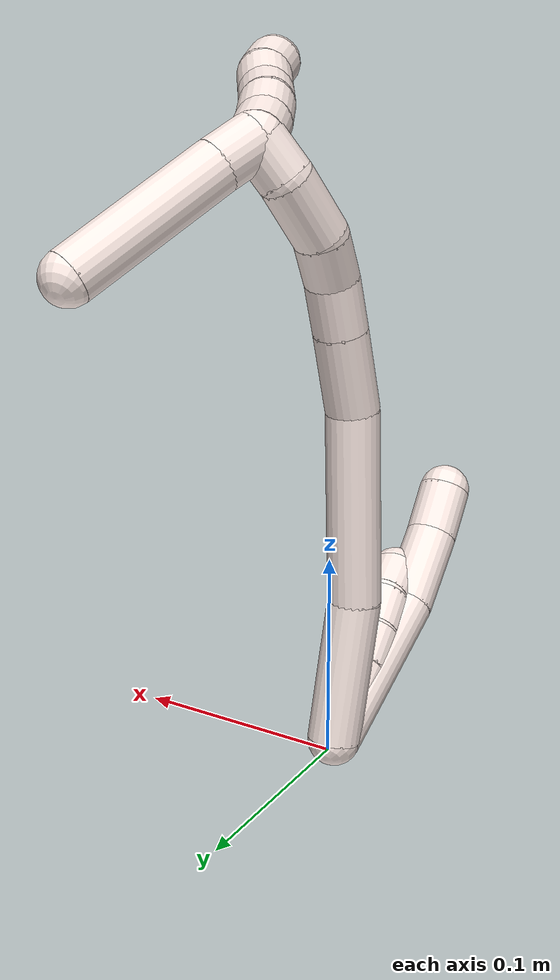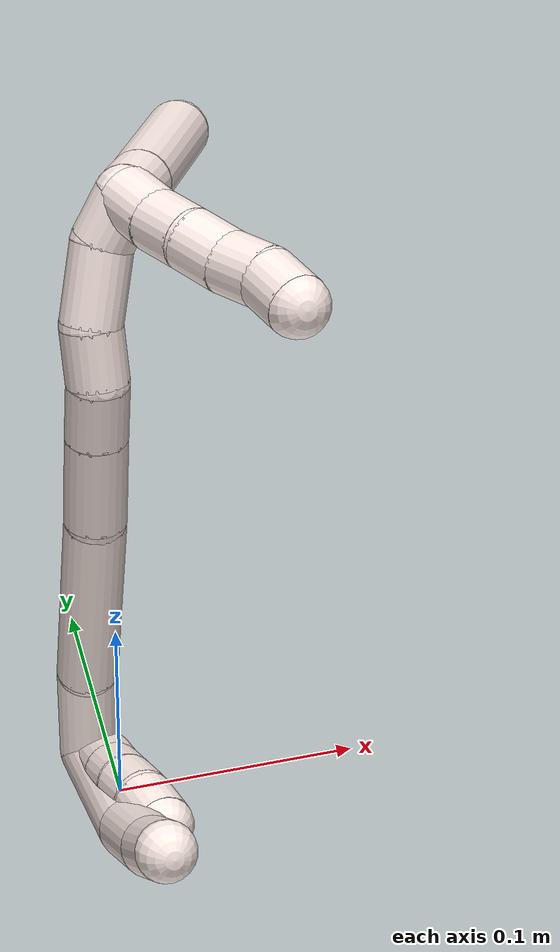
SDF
<sdf version="1.7">
 <world name="default">
  <model name="photoneo_s_sensor">
   <static>1</static>
   <pose>0 0 2 1.57079 1.57079 3.14159</pose>
   <link name="link">
    <inertial><mass>0.1</mass></inertial>
    <sensor name="sensor" type="depth">
     <update_rate>30</update_rate>
     <camera>
      <horizontal_fov>1.22</horizontal_fov>
      <image><width>1920</width><height>1200</height><format>B8G8R8</format></image>
      <clip><near>0.1</near><far>4</far></clip>
      <depth_camera><output>points</output></depth_camera>
     </camera>
     <plugin name="camera_plugin" filename="libgazebo_ros_depth_camera.so">
      <baseline>0.2</baseline>
      <alwaysOn>1</alwaysOn>
      <updateRate>0.0</updateRate>
      <cameraName>camera_ir</cameraName>
      <imageTopicName>/camera/color/image_raw</imageTopicName>
      <cameraInfoTopicName>/camera/color/camera_info</cameraInfoTopicName>
      <depthImageTopicName>/camera/depth/image_raw</depthImageTopicName>
      <depthImageCameraInfoTopicName>/camera/depth/camera_info</depthImageCameraInfoTopicName>
      <pointCloudTopicName>/camera/depth/points</pointCloudTopicName>
      <frameName>fr_optical</frameName>
      <pointCloudCutoff>0.1</pointCloudCutoff>
      <pointCloudCutoffMax>2.0</pointCloudCutoffMax>
      <distortionK1>0</distortionK1>
      <distortionK2>0</distortionK2>
      <distortionK3>0</distortionK3>
      <distortionT1>0</distortionT1>
      <distortionT2>0</distortionT2>
      <CxPrime>0</CxPrime>
      <Cx>0</Cx>
      <Cy>0</Cy>
      <focalLength>0</focalLength>
      <hackBaseline>0</hackBaseline>
     </plugin>
    </sensor>
   </link>
  </model>
  <model name="bin">
   <static>1</static>
   <link name="bottom">
    <collision name="collision-bottom">
     <pose>0 0 -0.01 0 -0 0</pose>
     <geometry><box><size>0.8 0.6 0.02</size></box></geometry>
     <surface>
      <friction><ode><mu>100</mu><mu2>100</mu2></ode></friction>
      <contact><collide_bitmask>65535</collide_bitmask></contact>
     </surface>
    </collision>
   </link>
   <link name="west_wall">
    <collision name="collision-west_wall">
     <pose>-0.41 0 0.1 0 -0 0</pose>
     <geometry><box><size>0.02 0.6 0.2</size></box></geometry>
     <surface>
      <friction><ode><mu>100</mu><mu2>100</mu2></ode></friction>
      <contact><collide_bitmask>65535</collide_bitmask></contact>
     </surface>
    </collision>
   </link>
   <link name="east_wall">
    <collision name="collision-east_wall">
     <pose>0.41 0 0.1 0 -0 0</pose>
     <geometry><box><size>0.02 0.6 0.2</size></box></geometry>
     <surface>
      <friction><ode><mu>100</mu><mu2>100</mu2></ode></friction>
      <contact><collide_bitmask>65535</collide_bitmask></contact>
     </surface>
    </collision>
   </link>
   <link name="south_wall">
    <collision name="collision-south_wall">
     <pose>0 -0.31 0.1 0 -0 0</pose>
     <geometry><box><size>0.8 0.02 0.2</size></box></geometry>
     <surface>
      <friction><ode><mu>100</mu><mu2>100</mu2></ode></friction>
      <contact><collide_bitmask>65535</collide_bitmask></contact>
     </surface>
    </collision>
   </link>
   <link name="north_wall">
    <collision name="collision-north_wall">
     <pose>0 0.31 0.1 0 -0 0</pose>
     <geometry><box><size>0.8 0.02 0.2</size></box></geometry>
     <surface>
      <friction><ode><mu>100</mu><mu2>100</mu2></ode></friction>
      <contact><collide_bitmask>65535</collide_bitmask></contact>
     </surface>
    </collision>
   </link>
  </model>
  <model name="11">
   <static>0</static>
   <link name="11">
    <collision name="collision-cylinder-e_1_2_8">
     <pose>-0.004917 -0.001652 0.041779 0.039524 -0.11706 -0.002316</pose>
     <geometry><cylinder><radius>0.0125</radius><length>0.0842</length></cylinder></geometry>
     <surface>
      <friction><ode><mu>1.16</mu><mu2>1.16</mu2><slip1>0</slip1><slip2>0</slip2></ode></friction>
      <contact><ode><kp>1e+06</kp><kd>1</kd><max_vel>0</max_vel><min_depth>0.001</min_depth></ode></contact>
     </surface>
    </collision>
    <visual name="visual-cylinder-e_1_2_8">
     <pose>-0.004917 -0.001652 0.041779 0.039524 -0.11706 -0.002316</pose>
     <geometry><cylinder><radius>0.0125</radius><length>0.0842</length></cylinder></geometry>
     <material><ambient>1 0.933333 0.909804 1</ambient></material>
    </visual>
    <collision name="collision-cylinder-e_2_8_9">
     <pose>-0.0098 -0.000385 0.103341 -0.146503 0.001705 -0.000125</pose>
     <geometry><cylinder><radius>0.0125</radius><length>0.039994</length></cylinder></geometry>
     <surface>
      <friction><ode><mu>1.16</mu><mu2>1.16</mu2><slip1>0</slip1><slip2>0</slip2></ode></friction>
      <contact><ode><kp>1e+06</kp><kd>1</kd><max_vel>0</max_vel><min_depth>0.001</min_depth></ode></contact>
     </surface>
    </collision>
    <visual name="visual-cylinder-e_2_8_9">
     <pose>-0.0098 -0.000385 0.103341 -0.146503 0.001705 -0.000125</pose>
     <geometry><cylinder><radius>0.0125</radius><length>0.039994</length></cylinder></geometry>
     <material><ambient>1 0.933333 0.909804 1</ambient></material>
    </visual>
    <collision name="collision-cylinder-e_3_9_6">
     <pose>-0.009136 0.005717 0.135612 -0.249557 0.048852 -0.006129</pose>
     <geometry><cylinder><radius>0.0125</radius><length>0.025806</length></cylinder></geometry>
     <surface>
      <friction><ode><mu>1.16</mu><mu2>1.16</mu2><slip1>0</slip1><slip2>0</slip2></ode></friction>
      <contact><ode><kp>1e+06</kp><kd>1</kd><max_vel>0</max_vel><min_depth>0.001</min_depth></ode></contact>
     </surface>
    </collision>
    <visual name="visual-cylinder-e_3_9_6">
     <pose>-0.009136 0.005717 0.135612 -0.249557 0.048852 -0.006129</pose>
     <geometry><cylinder><radius>0.0125</radius><length>0.025806</length></cylinder></geometry>
     <material><ambient>1 0.933333 0.909804 1</ambient></material>
    </visual>
    <collision name="collision-cylinder-e_1_2_10">
     <pose>0.000644 0.000528 0.009965 -0.052964 0.064463 -0.001708</pose>
     <geometry><cylinder><radius>0.0125</radius><length>0.02</length></cylinder></geometry>
     <surface>
      <friction><ode><mu>1.16</mu><mu2>1.16</mu2><slip1>0</slip1><slip2>0</slip2></ode></friction>
      <contact><ode><kp>1e+06</kp><kd>1</kd><max_vel>0</max_vel><min_depth>0.001</min_depth></ode></contact>
     </surface>
    </collision>
    <visual name="visual-cylinder-e_1_2_10">
     <pose>0.000644 0.000528 0.009965 -0.052964 0.064463 -0.001708</pose>
     <geometry><cylinder><radius>0.0125</radius><length>0.02</length></cylinder></geometry>
     <material><ambient>1 0.933333 0.909804 1</ambient></material>
    </visual>
    <collision name="collision-cylinder-e_2_10_11">
     <pose>0.000763 0.001847 0.029885 -0.079219 -0.052513 0.002082</pose>
     <geometry><cylinder><radius>0.0125</radius><length>0.02</length></cylinder></geometry>
     <surface>
      <friction><ode><mu>1.16</mu><mu2>1.16</mu2><slip1>0</slip1><slip2>0</slip2></ode></friction>
      <contact><ode><kp>1e+06</kp><kd>1</kd><max_vel>0</max_vel><min_depth>0.001</min_depth></ode></contact>
     </surface>
    </collision>
    <visual name="visual-cylinder-e_2_10_11">
     <pose>0.000763 0.001847 0.029885 -0.079219 -0.052513 0.002082</pose>
     <geometry><cylinder><radius>0.0125</radius><length>0.02</length></cylinder></geometry>
     <material><ambient>1 0.933333 0.909804 1</ambient></material>
    </visual>
    <collision name="collision-cylinder-e_3_11_12">
     <pose>0.000251 0.003293 0.049819 -0.065662 0.001205 -4e-05</pose>
     <geometry><cylinder><radius>0.0125</radius><length>0.02</length></cylinder></geometry>
     <surface>
      <friction><ode><mu>1.16</mu><mu2>1.16</mu2><slip1>0</slip1><slip2>0</slip2></ode></friction>
      <contact><ode><kp>1e+06</kp><kd>1</kd><max_vel>0</max_vel><min_depth>0.001</min_depth></ode></contact>
     </surface>
    </collision>
    <visual name="visual-cylinder-e_3_11_12">
     <pose>0.000251 0.003293 0.049819 -0.065662 0.001205 -4e-05</pose>
     <geometry><cylinder><radius>0.0125</radius><length>0.02</length></cylinder></geometry>
     <material><ambient>1 0.933333 0.909804 1</ambient></material>
    </visual>
    <collision name="collision-cylinder-e_4_12_13">
     <pose>0.000645 0.003362 0.069773 0.058812 0.038281 0.001126</pose>
     <geometry><cylinder><radius>0.0125</radius><length>0.02</length></cylinder></geometry>
     <surface>
      <friction><ode><mu>1.16</mu><mu2>1.16</mu2><slip1>0</slip1><slip2>0</slip2></ode></friction>
      <contact><ode><kp>1e+06</kp><kd>1</kd><max_vel>0</max_vel><min_depth>0.001</min_depth></ode></contact>
     </surface>
    </collision>
    <visual name="visual-cylinder-e_4_12_13">
     <pose>0.000645 0.003362 0.069773 0.058812 0.038281 0.001126</pose>
     <geometry><cylinder><radius>0.0125</radius><length>0.02</length></cylinder></geometry>
     <material><ambient>1 0.933333 0.909804 1</ambient></material>
    </visual>
    <collision name="collision-cylinder-e_5_13_5">
     <pose>0.001007 0.000162 0.089401 0.264331 -0.00215 -0.000286</pose>
     <geometry><cylinder><radius>0.0125</radius><length>0.02</length></cylinder></geometry>
     <surface>
      <friction><ode><mu>1.16</mu><mu2>1.16</mu2><slip1>0</slip1><slip2>0</slip2></ode></friction>
      <contact><ode><kp>1e+06</kp><kd>1</kd><max_vel>0</max_vel><min_depth>0.001</min_depth></ode></contact>
     </surface>
    </collision>
    <visual name="visual-cylinder-e_5_13_5">
     <pose>0.001007 0.000162 0.089401 0.264331 -0.00215 -0.000286</pose>
     <geometry><cylinder><radius>0.0125</radius><length>0.02</length></cylinder></geometry>
     <material><ambient>1 0.933333 0.909804 1</ambient></material>
    </visual>
    <collision name="collision-cylinder-e_1_2_14">
     <pose>0.004838 0.024747 0.022764 -0.827104 0.142912 -0.062805</pose>
     <geometry><cylinder><radius>0.0125</radius><length>0.067941</length></cylinder></geometry>
     <surface>
      <friction><ode><mu>1.16</mu><mu2>1.16</mu2><slip1>0</slip1><slip2>0</slip2></ode></friction>
      <contact><ode><kp>1e+06</kp><kd>1</kd><max_vel>0</max_vel><min_depth>0.001</min_depth></ode></contact>
     </surface>
    </collision>
    <visual name="visual-cylinder-e_1_2_14">
     <pose>0.004838 0.024747 0.022764 -0.827104 0.142912 -0.062805</pose>
     <geometry><cylinder><radius>0.0125</radius><length>0.067941</length></cylinder></geometry>
     <material><ambient>1 0.933333 0.909804 1</ambient></material>
    </visual>
    <collision name="collision-cylinder-e_2_14_15">
     <pose>0.021904 0.085707 0.071053 -0.956836 0.269268 -0.140262</pose>
     <geometry><cylinder><radius>0.0125</radius><length>0.091923</length></cylinder></geometry>
     <surface>
      <friction><ode><mu>1.16</mu><mu2>1.16</mu2><slip1>0</slip1><slip2>0</slip2></ode></friction>
      <contact><ode><kp>1e+06</kp><kd>1</kd><max_vel>0</max_vel><min_depth>0.001</min_depth></ode></contact>
     </surface>
    </collision>
    <visual name="visual-cylinder-e_2_14_15">
     <pose>0.021904 0.085707 0.071053 -0.956836 0.269268 -0.140262</pose>
     <geometry><cylinder><radius>0.0125</radius><length>0.091923</length></cylinder></geometry>
     <material><ambient>1 0.933333 0.909804 1</ambient></material>
    </visual>
    <collision name="collision-cylinder-e_3_15_16">
     <pose>0.040869 0.13897 0.103639 -1.17809 0.350113 -0.235265</pose>
     <geometry><cylinder><radius>0.0125</radius><length>0.03929</length></cylinder></geometry>
     <surface>
      <friction><ode><mu>1.16</mu><mu2>1.16</mu2><slip1>0</slip1><slip2>0</slip2></ode></friction>
      <contact><ode><kp>1e+06</kp><kd>1</kd><max_vel>0</max_vel><min_depth>0.001</min_depth></ode></contact>
     </surface>
    </collision>
    <visual name="visual-cylinder-e_3_15_16">
     <pose>0.040869 0.13897 0.103639 -1.17809 0.350113 -0.235265</pose>
     <geometry><cylinder><radius>0.0125</radius><length>0.03929</length></cylinder></geometry>
     <material><ambient>1 0.933333 0.909804 1</ambient></material>
    </visual>
    <collision name="collision-cylinder-e_4_16_17">
     <pose>0.052029 0.166788 0.115146 -1.17942 0.362723 -0.244186</pose>
     <geometry><cylinder><radius>0.0125</radius><length>0.024922</length></cylinder></geometry>
     <surface>
      <friction><ode><mu>1.16</mu><mu2>1.16</mu2><slip1>0</slip1><slip2>0</slip2></ode></friction>
      <contact><ode><kp>1e+06</kp><kd>1</kd><max_vel>0</max_vel><min_depth>0.001</min_depth></ode></contact>
     </surface>
    </collision>
    <visual name="visual-cylinder-e_4_16_17">
     <pose>0.052029 0.166788 0.115146 -1.17942 0.362723 -0.244186</pose>
     <geometry><cylinder><radius>0.0125</radius><length>0.024922</length></cylinder></geometry>
     <material><ambient>1 0.933333 0.909804 1</ambient></material>
    </visual>
    <collision name="collision-cylinder-e_5_17_18">
     <pose>0.060212 0.188622 0.120787 -1.46301 0.325957 -0.293093</pose>
     <geometry><cylinder><radius>0.0125</radius><length>0.023495</length></cylinder></geometry>
     <surface>
      <friction><ode><mu>1.16</mu><mu2>1.16</mu2><slip1>0</slip1><slip2>0</slip2></ode></friction>
      <contact><ode><kp>1e+06</kp><kd>1</kd><max_vel>0</max_vel><min_depth>0.001</min_depth></ode></contact>
     </surface>
    </collision>
    <visual name="visual-cylinder-e_5_17_18">
     <pose>0.060212 0.188622 0.120787 -1.46301 0.325957 -0.293093</pose>
     <geometry><cylinder><radius>0.0125</radius><length>0.023495</length></cylinder></geometry>
     <material><ambient>1 0.933333 0.909804 1</ambient></material>
    </visual>
    <collision name="collision-cylinder-e_6_18_19">
     <pose>0.072988 0.212942 0.122729 -1.51469 0.596457 -0.565653</pose>
     <geometry><cylinder><radius>0.0125</radius><length>0.032097</length></cylinder></geometry>
     <surface>
      <friction><ode><mu>1.16</mu><mu2>1.16</mu2><slip1>0</slip1><slip2>0</slip2></ode></friction>
      <contact><ode><kp>1e+06</kp><kd>1</kd><max_vel>0</max_vel><min_depth>0.001</min_depth></ode></contact>
     </surface>
    </collision>
    <visual name="visual-cylinder-e_6_18_19">
     <pose>0.072988 0.212942 0.122729 -1.51469 0.596457 -0.565653</pose>
     <geometry><cylinder><radius>0.0125</radius><length>0.032097</length></cylinder></geometry>
     <material><ambient>1 0.933333 0.909804 1</ambient></material>
    </visual>
    <collision name="collision-cylinder-e_7_19_1">
     <pose>0.089613 0.232454 0.125982 -1.18938 0.846023 -0.591151</pose>
     <geometry><cylinder><radius>0.0125</radius><length>0.020331</length></cylinder></geometry>
     <surface>
      <friction><ode><mu>1.16</mu><mu2>1.16</mu2><slip1>0</slip1><slip2>0</slip2></ode></friction>
      <contact><ode><kp>1e+06</kp><kd>1</kd><max_vel>0</max_vel><min_depth>0.001</min_depth></ode></contact>
     </surface>
    </collision>
    <visual name="visual-cylinder-e_7_19_1">
     <pose>0.089613 0.232454 0.125982 -1.18938 0.846023 -0.591151</pose>
     <geometry><cylinder><radius>0.0125</radius><length>0.020331</length></cylinder></geometry>
     <material><ambient>1 0.933333 0.909804 1</ambient></material>
    </visual>
    <collision name="collision-cylinder-e_1_1_20">
     <pose>0.102484 0.237309 0.119555 2.98621 0.526798 2.57951</pose>
     <geometry><cylinder><radius>0.0125</radius><length>0.020925</length></cylinder></geometry>
     <surface>
      <friction><ode><mu>1.16</mu><mu2>1.16</mu2><slip1>0</slip1><slip2>0</slip2></ode></friction>
      <contact><ode><kp>1e+06</kp><kd>1</kd><max_vel>0</max_vel><min_depth>0.001</min_depth></ode></contact>
     </surface>
    </collision>
    <visual name="visual-cylinder-e_1_1_20">
     <pose>0.102484 0.237309 0.119555 2.98621 0.526798 2.57951</pose>
     <geometry><cylinder><radius>0.0125</radius><length>0.020925</length></cylinder></geometry>
     <material><ambient>1 0.933333 0.909804 1</ambient></material>
    </visual>
    <collision name="collision-cylinder-e_2_20_4">
     <pose>0.125607 0.230955 0.075697 3.00066 0.468756 2.56673</pose>
     <geometry><cylinder><radius>0.0125</radius><length>0.079075</length></cylinder></geometry>
     <surface>
      <friction><ode><mu>1.16</mu><mu2>1.16</mu2><slip1>0</slip1><slip2>0</slip2></ode></friction>
      <contact><ode><kp>1e+06</kp><kd>1</kd><max_vel>0</max_vel><min_depth>0.001</min_depth></ode></contact>
     </surface>
    </collision>
    <visual name="visual-cylinder-e_2_20_4">
     <pose>0.125607 0.230955 0.075697 3.00066 0.468756 2.56673</pose>
     <geometry><cylinder><radius>0.0125</radius><length>0.079075</length></cylinder></geometry>
     <material><ambient>1 0.933333 0.909804 1</ambient></material>
    </visual>
    <collision name="collision-cylinder-e_1_1_21">
     <pose>0.098726 0.234341 0.13736 0.457664 0.150779 0.035181</pose>
     <geometry><cylinder><radius>0.0125</radius><length>0.02</length></cylinder></geometry>
     <surface>
      <friction><ode><mu>1.16</mu><mu2>1.16</mu2><slip1>0</slip1><slip2>0</slip2></ode></friction>
      <contact><ode><kp>1e+06</kp><kd>1</kd><max_vel>0</max_vel><min_depth>0.001</min_depth></ode></contact>
     </surface>
    </collision>
    <visual name="visual-cylinder-e_1_1_21">
     <pose>0.098726 0.234341 0.13736 0.457664 0.150779 0.035181</pose>
     <geometry><cylinder><radius>0.0125</radius><length>0.02</length></cylinder></geometry>
     <material><ambient>1 0.933333 0.909804 1</ambient></material>
    </visual>
    <collision name="collision-cylinder-e_2_21_22">
     <pose>0.102526 0.226293 0.155239 0.387642 0.231885 0.045713</pose>
     <geometry><cylinder><radius>0.0125</radius><length>0.02</length></cylinder></geometry>
     <surface>
      <friction><ode><mu>1.16</mu><mu2>1.16</mu2><slip1>0</slip1><slip2>0</slip2></ode></friction>
      <contact><ode><kp>1e+06</kp><kd>1</kd><max_vel>0</max_vel><min_depth>0.001</min_depth></ode></contact>
     </surface>
    </collision>
    <visual name="visual-cylinder-e_2_21_22">
     <pose>0.102526 0.226293 0.155239 0.387642 0.231885 0.045713</pose>
     <geometry><cylinder><radius>0.0125</radius><length>0.02</length></cylinder></geometry>
     <material><ambient>1 0.933333 0.909804 1</ambient></material>
    </visual>
    <collision name="collision-cylinder-e_3_22_23">
     <pose>0.107785 0.217623 0.172393 0.549859 0.300597 0.085383</pose>
     <geometry><cylinder><radius>0.0125</radius><length>0.02</length></cylinder></geometry>
     <surface>
      <friction><ode><mu>1.16</mu><mu2>1.16</mu2><slip1>0</slip1><slip2>0</slip2></ode></friction>
      <contact><ode><kp>1e+06</kp><kd>1</kd><max_vel>0</max_vel><min_depth>0.001</min_depth></ode></contact>
     </surface>
    </collision>
    <visual name="visual-cylinder-e_3_22_23">
     <pose>0.107785 0.217623 0.172393 0.549859 0.300597 0.085383</pose>
     <geometry><cylinder><radius>0.0125</radius><length>0.02</length></cylinder></geometry>
     <material><ambient>1 0.933333 0.909804 1</ambient></material>
    </visual>
    <collision name="collision-cylinder-e_4_23_24">
     <pose>0.114141 0.209028 0.189225 0.393234 0.346322 0.069654</pose>
     <geometry><cylinder><radius>0.0125</radius><length>0.02</length></cylinder></geometry>
     <surface>
      <friction><ode><mu>1.16</mu><mu2>1.16</mu2><slip1>0</slip1><slip2>0</slip2></ode></friction>
      <contact><ode><kp>1e+06</kp><kd>1</kd><max_vel>0</max_vel><min_depth>0.001</min_depth></ode></contact>
     </surface>
    </collision>
    <visual name="visual-cylinder-e_4_23_24">
     <pose>0.114141 0.209028 0.189225 0.393234 0.346322 0.069654</pose>
     <geometry><cylinder><radius>0.0125</radius><length>0.02</length></cylinder></geometry>
     <material><ambient>1 0.933333 0.909804 1</ambient></material>
    </visual>
    <collision name="collision-cylinder-e_5_24_3">
     <pose>0.118346 0.201159 0.206922 0.442148 0.081219 0.018263</pose>
     <geometry><cylinder><radius>0.0125</radius><length>0.02</length></cylinder></geometry>
     <surface>
      <friction><ode><mu>1.16</mu><mu2>1.16</mu2><slip1>0</slip1><slip2>0</slip2></ode></friction>
      <contact><ode><kp>1e+06</kp><kd>1</kd><max_vel>0</max_vel><min_depth>0.001</min_depth></ode></contact>
     </surface>
    </collision>
    <visual name="visual-cylinder-e_5_24_3">
     <pose>0.118346 0.201159 0.206922 0.442148 0.081219 0.018263</pose>
     <geometry><cylinder><radius>0.0125</radius><length>0.02</length></cylinder></geometry>
     <material><ambient>1 0.933333 0.909804 1</ambient></material>
    </visual>
    <collision name="collision-sphere-3">
     <pose>0.119158 0.196894 0.21593 0 -0 0</pose>
     <geometry><sphere><radius>0.0125</radius></sphere></geometry>
     <surface>
      <friction><ode><mu>1.16</mu><mu2>1.16</mu2><slip1>0</slip1><slip2>0</slip2></ode></friction>
      <contact><ode><kp>1e+06</kp><kd>1</kd><max_vel>0</max_vel><min_depth>0.001</min_depth></ode></contact>
     </surface>
    </collision>
    <visual name="visual-sphere-3">
     <pose>0.119158 0.196894 0.21593 0 -0 0</pose>
     <geometry><sphere><radius>0.0125</radius></sphere></geometry>
     <material><ambient>1 0.933333 0.909804 1</ambient></material>
    </visual>
    <collision name="collision-sphere-24">
     <pose>0.117535 0.205423 0.197913 0 -0 0</pose>
     <geometry><sphere><radius>0.0125</radius></sphere></geometry>
     <surface>
      <friction><ode><mu>1.16</mu><mu2>1.16</mu2><slip1>0</slip1><slip2>0</slip2></ode></friction>
      <contact><ode><kp>1e+06</kp><kd>1</kd><max_vel>0</max_vel><min_depth>0.001</min_depth></ode></contact>
     </surface>
    </collision>
    <visual name="visual-sphere-24">
     <pose>0.117535 0.205423 0.197913 0 -0 0</pose>
     <geometry><sphere><radius>0.0125</radius></sphere></geometry>
     <material><ambient>1 0.933333 0.909804 1</ambient></material>
    </visual>
    <collision name="collision-sphere-23">
     <pose>0.110746 0.212632 0.180536 0 -0 0</pose>
     <geometry><sphere><radius>0.0125</radius></sphere></geometry>
     <surface>
      <friction><ode><mu>1.16</mu><mu2>1.16</mu2><slip1>0</slip1><slip2>0</slip2></ode></friction>
      <contact><ode><kp>1e+06</kp><kd>1</kd><max_vel>0</max_vel><min_depth>0.001</min_depth></ode></contact>
     </surface>
    </collision>
    <visual name="visual-sphere-23">
     <pose>0.110746 0.212632 0.180536 0 -0 0</pose>
     <geometry><sphere><radius>0.0125</radius></sphere></geometry>
     <material><ambient>1 0.933333 0.909804 1</ambient></material>
    </visual>
    <collision name="collision-sphere-22">
     <pose>0.104824 0.222615 0.164249 0 -0 0</pose>
     <geometry><sphere><radius>0.0125</radius></sphere></geometry>
     <surface>
      <friction><ode><mu>1.16</mu><mu2>1.16</mu2><slip1>0</slip1><slip2>0</slip2></ode></friction>
      <contact><ode><kp>1e+06</kp><kd>1</kd><max_vel>0</max_vel><min_depth>0.001</min_depth></ode></contact>
     </surface>
    </collision>
    <visual name="visual-sphere-22">
     <pose>0.104824 0.222615 0.164249 0 -0 0</pose>
     <geometry><sphere><radius>0.0125</radius></sphere></geometry>
     <material><ambient>1 0.933333 0.909804 1</ambient></material>
    </visual>
    <collision name="collision-sphere-21">
     <pose>0.100228 0.229972 0.146229 0 -0 0</pose>
     <geometry><sphere><radius>0.0125</radius></sphere></geometry>
     <surface>
      <friction><ode><mu>1.16</mu><mu2>1.16</mu2><slip1>0</slip1><slip2>0</slip2></ode></friction>
      <contact><ode><kp>1e+06</kp><kd>1</kd><max_vel>0</max_vel><min_depth>0.001</min_depth></ode></contact>
     </surface>
    </collision>
    <visual name="visual-sphere-21">
     <pose>0.100228 0.229972 0.146229 0 -0 0</pose>
     <geometry><sphere><radius>0.0125</radius></sphere></geometry>
     <material><ambient>1 0.933333 0.909804 1</ambient></material>
    </visual>
    <collision name="collision-sphere-4">
     <pose>0.143469 0.226001 0.040775 0 -0 0</pose>
     <geometry><sphere><radius>0.0125</radius></sphere></geometry>
     <surface>
      <friction><ode><mu>1.16</mu><mu2>1.16</mu2><slip1>0</slip1><slip2>0</slip2></ode></friction>
      <contact><ode><kp>1e+06</kp><kd>1</kd><max_vel>0</max_vel><min_depth>0.001</min_depth></ode></contact>
     </surface>
    </collision>
    <visual name="visual-sphere-4">
     <pose>0.143469 0.226001 0.040775 0 -0 0</pose>
     <geometry><sphere><radius>0.0125</radius></sphere></geometry>
     <material><ambient>1 0.933333 0.909804 1</ambient></material>
    </visual>
    <collision name="collision-sphere-20">
     <pose>0.107745 0.23591 0.11062 0 -0 0</pose>
     <geometry><sphere><radius>0.0125</radius></sphere></geometry>
     <surface>
      <friction><ode><mu>1.16</mu><mu2>1.16</mu2><slip1>0</slip1><slip2>0</slip2></ode></friction>
      <contact><ode><kp>1e+06</kp><kd>1</kd><max_vel>0</max_vel><min_depth>0.001</min_depth></ode></contact>
     </surface>
    </collision>
    <visual name="visual-sphere-20">
     <pose>0.107745 0.23591 0.11062 0 -0 0</pose>
     <geometry><sphere><radius>0.0125</radius></sphere></geometry>
     <material><ambient>1 0.933333 0.909804 1</ambient></material>
    </visual>
    <collision name="collision-sphere-11">
     <pose>0.000239 0.002637 0.03984 0 -0 0</pose>
     <geometry><sphere><radius>0.0125</radius></sphere></geometry>
     <surface>
      <friction><ode><mu>1.16</mu><mu2>1.16</mu2><slip1>0</slip1><slip2>0</slip2></ode></friction>
      <contact><ode><kp>1e+06</kp><kd>1</kd><max_vel>0</max_vel><min_depth>0.001</min_depth></ode></contact>
     </surface>
    </collision>
    <visual name="visual-sphere-11">
     <pose>0.000239 0.002637 0.03984 0 -0 0</pose>
     <geometry><sphere><radius>0.0125</radius></sphere></geometry>
     <material><ambient>1 0.933333 0.909804 1</ambient></material>
    </visual>
    <collision name="collision-sphere-10">
     <pose>0.001288 0.001057 0.01993 0 -0 0</pose>
     <geometry><sphere><radius>0.0125</radius></sphere></geometry>
     <surface>
      <friction><ode><mu>1.16</mu><mu2>1.16</mu2><slip1>0</slip1><slip2>0</slip2></ode></friction>
      <contact><ode><kp>1e+06</kp><kd>1</kd><max_vel>0</max_vel><min_depth>0.001</min_depth></ode></contact>
     </surface>
    </collision>
    <visual name="visual-sphere-10">
     <pose>0.001288 0.001057 0.01993 0 -0 0</pose>
     <geometry><sphere><radius>0.0125</radius></sphere></geometry>
     <material><ambient>1 0.933333 0.909804 1</ambient></material>
    </visual>
    <collision name="collision-sphere-6">
     <pose>-0.008506 0.0089 0.148101 0 -0 0</pose>
     <geometry><sphere><radius>0.0125</radius></sphere></geometry>
     <surface>
      <friction><ode><mu>1.16</mu><mu2>1.16</mu2><slip1>0</slip1><slip2>0</slip2></ode></friction>
      <contact><ode><kp>1e+06</kp><kd>1</kd><max_vel>0</max_vel><min_depth>0.001</min_depth></ode></contact>
     </surface>
    </collision>
    <visual name="visual-sphere-6">
     <pose>-0.008506 0.0089 0.148101 0 -0 0</pose>
     <geometry><sphere><radius>0.0125</radius></sphere></geometry>
     <material><ambient>1 0.933333 0.909804 1</ambient></material>
    </visual>
    <collision name="collision-sphere-9">
     <pose>-0.009766 0.002534 0.123124 0 -0 0</pose>
     <geometry><sphere><radius>0.0125</radius></sphere></geometry>
     <surface>
      <friction><ode><mu>1.16</mu><mu2>1.16</mu2><slip1>0</slip1><slip2>0</slip2></ode></friction>
      <contact><ode><kp>1e+06</kp><kd>1</kd><max_vel>0</max_vel><min_depth>0.001</min_depth></ode></contact>
     </surface>
    </collision>
    <visual name="visual-sphere-9">
     <pose>-0.009766 0.002534 0.123124 0 -0 0</pose>
     <geometry><sphere><radius>0.0125</radius></sphere></geometry>
     <material><ambient>1 0.933333 0.909804 1</ambient></material>
    </visual>
    <collision name="collision-sphere-2">
     <geometry><sphere><radius>0.0125</radius></sphere></geometry>
     <surface>
      <friction><ode><mu>1.16</mu><mu2>1.16</mu2><slip1>0</slip1><slip2>0</slip2></ode></friction>
      <contact><ode><kp>1e+06</kp><kd>1</kd><max_vel>0</max_vel><min_depth>0.001</min_depth></ode></contact>
     </surface>
    </collision>
    <visual name="visual-sphere-2">
     <geometry><sphere><radius>0.0125</radius></sphere></geometry>
     <material><ambient>1 0.933333 0.909804 1</ambient></material>
    </visual>
    <collision name="collision-sphere-19">
     <pose>0.082003 0.226199 0.123473 0 -0 0</pose>
     <geometry><sphere><radius>0.0125</radius></sphere></geometry>
     <surface>
      <friction><ode><mu>1.16</mu><mu2>1.16</mu2><slip1>0</slip1><slip2>0</slip2></ode></friction>
      <contact><ode><kp>1e+06</kp><kd>1</kd><max_vel>0</max_vel><min_depth>0.001</min_depth></ode></contact>
     </surface>
    </collision>
    <visual name="visual-sphere-19">
     <pose>0.082003 0.226199 0.123473 0 -0 0</pose>
     <geometry><sphere><radius>0.0125</radius></sphere></geometry>
     <material><ambient>1 0.933333 0.909804 1</ambient></material>
    </visual>
    <collision name="collision-sphere-8">
     <pose>-0.009834 -0.003304 0.083559 0 -0 0</pose>
     <geometry><sphere><radius>0.0125</radius></sphere></geometry>
     <surface>
      <friction><ode><mu>1.16</mu><mu2>1.16</mu2><slip1>0</slip1><slip2>0</slip2></ode></friction>
      <contact><ode><kp>1e+06</kp><kd>1</kd><max_vel>0</max_vel><min_depth>0.001</min_depth></ode></contact>
     </surface>
    </collision>
    <visual name="visual-sphere-8">
     <pose>-0.009834 -0.003304 0.083559 0 -0 0</pose>
     <geometry><sphere><radius>0.0125</radius></sphere></geometry>
     <material><ambient>1 0.933333 0.909804 1</ambient></material>
    </visual>
    <collision name="collision-sphere-12">
     <pose>0.000263 0.003949 0.059797 0 -0 0</pose>
     <geometry><sphere><radius>0.0125</radius></sphere></geometry>
     <surface>
      <friction><ode><mu>1.16</mu><mu2>1.16</mu2><slip1>0</slip1><slip2>0</slip2></ode></friction>
      <contact><ode><kp>1e+06</kp><kd>1</kd><max_vel>0</max_vel><min_depth>0.001</min_depth></ode></contact>
     </surface>
    </collision>
    <visual name="visual-sphere-12">
     <pose>0.000263 0.003949 0.059797 0 -0 0</pose>
     <geometry><sphere><radius>0.0125</radius></sphere></geometry>
     <material><ambient>1 0.933333 0.909804 1</ambient></material>
    </visual>
    <collision name="collision-sphere-13">
     <pose>0.001028 0.002775 0.079748 0 -0 0</pose>
     <geometry><sphere><radius>0.0125</radius></sphere></geometry>
     <surface>
      <friction><ode><mu>1.16</mu><mu2>1.16</mu2><slip1>0</slip1><slip2>0</slip2></ode></friction>
      <contact><ode><kp>1e+06</kp><kd>1</kd><max_vel>0</max_vel><min_depth>0.001</min_depth></ode></contact>
     </surface>
    </collision>
    <visual name="visual-sphere-13">
     <pose>0.001028 0.002775 0.079748 0 -0 0</pose>
     <geometry><sphere><radius>0.0125</radius></sphere></geometry>
     <material><ambient>1 0.933333 0.909804 1</ambient></material>
    </visual>
    <collision name="collision-sphere-5">
     <pose>0.000985 -0.002451 0.099053 0 -0 0</pose>
     <geometry><sphere><radius>0.0125</radius></sphere></geometry>
     <surface>
      <friction><ode><mu>1.16</mu><mu2>1.16</mu2><slip1>0</slip1><slip2>0</slip2></ode></friction>
      <contact><ode><kp>1e+06</kp><kd>1</kd><max_vel>0</max_vel><min_depth>0.001</min_depth></ode></contact>
     </surface>
    </collision>
    <visual name="visual-sphere-5">
     <pose>0.000985 -0.002451 0.099053 0 -0 0</pose>
     <geometry><sphere><radius>0.0125</radius></sphere></geometry>
     <material><ambient>1 0.933333 0.909804 1</ambient></material>
    </visual>
    <collision name="collision-sphere-14">
     <pose>0.009677 0.049493 0.045528 0 -0 0</pose>
     <geometry><sphere><radius>0.0125</radius></sphere></geometry>
     <surface>
      <friction><ode><mu>1.16</mu><mu2>1.16</mu2><slip1>0</slip1><slip2>0</slip2></ode></friction>
      <contact><ode><kp>1e+06</kp><kd>1</kd><max_vel>0</max_vel><min_depth>0.001</min_depth></ode></contact>
     </surface>
    </collision>
    <visual name="visual-sphere-14">
     <pose>0.009677 0.049493 0.045528 0 -0 0</pose>
     <geometry><sphere><radius>0.0125</radius></sphere></geometry>
     <material><ambient>1 0.933333 0.909804 1</ambient></material>
    </visual>
    <collision name="collision-sphere-15">
     <pose>0.034131 0.121921 0.096578 0 -0 0</pose>
     <geometry><sphere><radius>0.0125</radius></sphere></geometry>
     <surface>
      <friction><ode><mu>1.16</mu><mu2>1.16</mu2><slip1>0</slip1><slip2>0</slip2></ode></friction>
      <contact><ode><kp>1e+06</kp><kd>1</kd><max_vel>0</max_vel><min_depth>0.001</min_depth></ode></contact>
     </surface>
    </collision>
    <visual name="visual-sphere-15">
     <pose>0.034131 0.121921 0.096578 0 -0 0</pose>
     <geometry><sphere><radius>0.0125</radius></sphere></geometry>
     <material><ambient>1 0.933333 0.909804 1</ambient></material>
    </visual>
    <collision name="collision-sphere-16">
     <pose>0.047607 0.156019 0.110701 0 -0 0</pose>
     <geometry><sphere><radius>0.0125</radius></sphere></geometry>
     <surface>
      <friction><ode><mu>1.16</mu><mu2>1.16</mu2><slip1>0</slip1><slip2>0</slip2></ode></friction>
      <contact><ode><kp>1e+06</kp><kd>1</kd><max_vel>0</max_vel><min_depth>0.001</min_depth></ode></contact>
     </surface>
    </collision>
    <visual name="visual-sphere-16">
     <pose>0.047607 0.156019 0.110701 0 -0 0</pose>
     <geometry><sphere><radius>0.0125</radius></sphere></geometry>
     <material><ambient>1 0.933333 0.909804 1</ambient></material>
    </visual>
    <collision name="collision-sphere-17">
     <pose>0.05645 0.177558 0.11959 0 -0 0</pose>
     <geometry><sphere><radius>0.0125</radius></sphere></geometry>
     <surface>
      <friction><ode><mu>1.16</mu><mu2>1.16</mu2><slip1>0</slip1><slip2>0</slip2></ode></friction>
      <contact><ode><kp>1e+06</kp><kd>1</kd><max_vel>0</max_vel><min_depth>0.001</min_depth></ode></contact>
     </surface>
    </collision>
    <visual name="visual-sphere-17">
     <pose>0.05645 0.177558 0.11959 0 -0 0</pose>
     <geometry><sphere><radius>0.0125</radius></sphere></geometry>
     <material><ambient>1 0.933333 0.909804 1</ambient></material>
    </visual>
    <collision name="collision-sphere-18">
     <pose>0.063974 0.199686 0.121984 0 -0 0</pose>
     <geometry><sphere><radius>0.0125</radius></sphere></geometry>
     <surface>
      <friction><ode><mu>1.16</mu><mu2>1.16</mu2><slip1>0</slip1><slip2>0</slip2></ode></friction>
      <contact><ode><kp>1e+06</kp><kd>1</kd><max_vel>0</max_vel><min_depth>0.001</min_depth></ode></contact>
     </surface>
    </collision>
    <visual name="visual-sphere-18">
     <pose>0.063974 0.199686 0.121984 0 -0 0</pose>
     <geometry><sphere><radius>0.0125</radius></sphere></geometry>
     <material><ambient>1 0.933333 0.909804 1</ambient></material>
    </visual>
    <collision name="collision-sphere-1">
     <pose>0.097224 0.238709 0.12849 0 -0 0</pose>
     <geometry><sphere><radius>0.0125</radius></sphere></geometry>
     <surface>
      <friction><ode><mu>1.16</mu><mu2>1.16</mu2><slip1>0</slip1><slip2>0</slip2></ode></friction>
      <contact><ode><kp>1e+06</kp><kd>1</kd><max_vel>0</max_vel><min_depth>0.001</min_depth></ode></contact>
     </surface>
    </collision>
    <visual name="visual-sphere-1">
     <pose>0.097224 0.238709 0.12849 0 -0 0</pose>
     <geometry><sphere><radius>0.0125</radius></sphere></geometry>
     <material><ambient>1 0.933333 0.909804 1</ambient></material>
    </visual>
    <inertial>
     <pose>0.043674 0.107125 0.088261 0 -0 0</pose>
     <mass>0.75</mass>
     <inertia>
      <ixx>0.000168</ixx>
      <ixy>0</ixy>
      <ixz>0</ixz>
      <iyy>0.000205</iyy>
      <iyz>0</iyz>
      <izz>-9.6e-05</izz>
     </inertia>
    </inertial>
   </link>
   <pose>-0.009983 0.012321 0.015101 1.01418 -0.234758 0.273351</pose>
  </model>
 </world>
</sdf>
